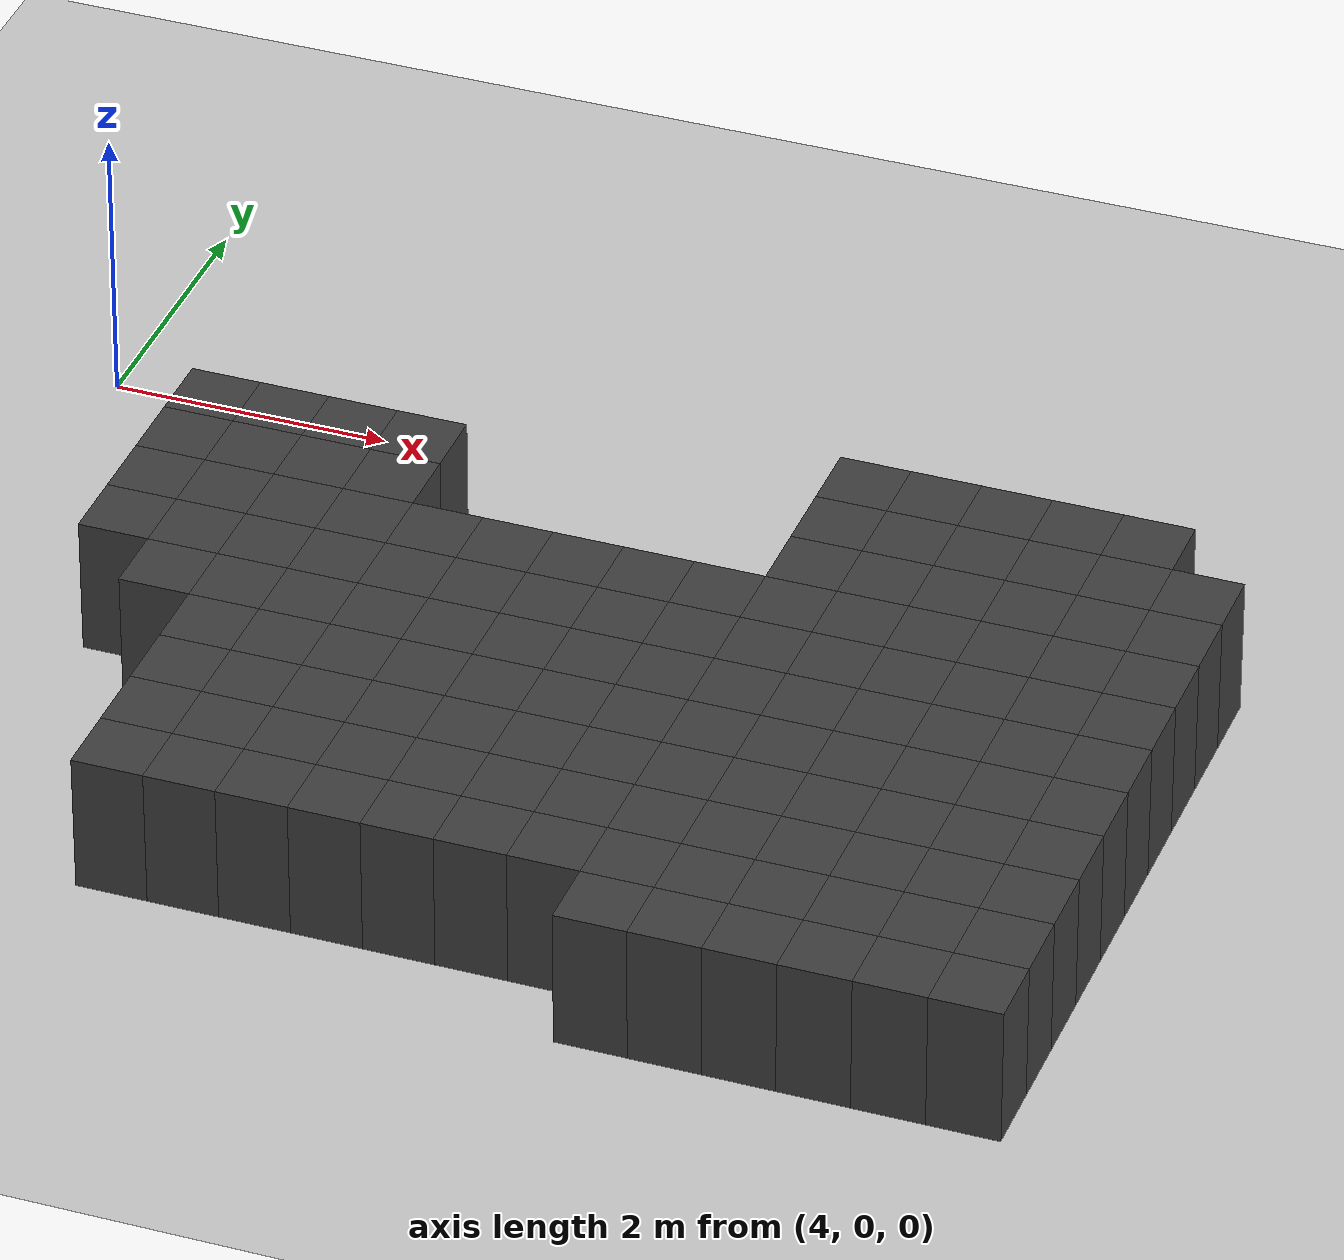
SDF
<sdf version="1.7">
 <world name="map_10777">
  <model name="ground_plane">
   <static>true</static>
   <link name="link">
    <collision name="collision">
     <geometry><plane><normal>0 0 1</normal><size>200 200</size></plane></geometry>
    </collision>
    <visual name="visual">
     <geometry><plane><normal>0 0 1</normal><size>200 200</size></plane></geometry>
     <material><ambient>0.8 0.8 0.8 1</ambient><diffuse>0.8 0.8 0.8 1</diffuse></material>
    </visual>
   </link>
  </model>
  <model name="maze_environment">
   <static>true</static>
   <link name="wall_1205">
    <pose>9.750 -0.750 0.500 0 0 0</pose>
    <collision name="col"><geometry><box><size>0.5 0.5 1.0</size></box></geometry></collision>
    <visual name="vis">
     <geometry><box><size>0.5 0.5 1.0</size></box></geometry>
     <material><ambient>0.15 0.15 0.15 1</ambient><diffuse>0.25 0.25 0.25 1</diffuse></material>
    </visual>
   </link>
   <link name="wall_1206">
    <pose>10.250 -0.750 0.500 0 0 0</pose>
    <collision name="col"><geometry><box><size>0.5 0.5 1.0</size></box></geometry></collision>
    <visual name="vis">
     <geometry><box><size>0.5 0.5 1.0</size></box></geometry>
     <material><ambient>0.15 0.15 0.15 1</ambient><diffuse>0.25 0.25 0.25 1</diffuse></material>
    </visual>
   </link>
   <link name="wall_1207">
    <pose>10.750 -0.750 0.500 0 0 0</pose>
    <collision name="col"><geometry><box><size>0.5 0.5 1.0</size></box></geometry></collision>
    <visual name="vis">
     <geometry><box><size>0.5 0.5 1.0</size></box></geometry>
     <material><ambient>0.15 0.15 0.15 1</ambient><diffuse>0.25 0.25 0.25 1</diffuse></material>
    </visual>
   </link>
   <link name="wall_1208">
    <pose>11.250 -0.750 0.500 0 0 0</pose>
    <collision name="col"><geometry><box><size>0.5 0.5 1.0</size></box></geometry></collision>
    <visual name="vis">
     <geometry><box><size>0.5 0.5 1.0</size></box></geometry>
     <material><ambient>0.15 0.15 0.15 1</ambient><diffuse>0.25 0.25 0.25 1</diffuse></material>
    </visual>
   </link>
   <link name="wall_1209">
    <pose>11.750 -0.750 0.500 0 0 0</pose>
    <collision name="col"><geometry><box><size>0.5 0.5 1.0</size></box></geometry></collision>
    <visual name="vis">
     <geometry><box><size>0.5 0.5 1.0</size></box></geometry>
     <material><ambient>0.15 0.15 0.15 1</ambient><diffuse>0.25 0.25 0.25 1</diffuse></material>
    </visual>
   </link>
   <link name="wall_1244">
    <pose>5.250 -1.250 0.500 0 0 0</pose>
    <collision name="col"><geometry><box><size>0.5 0.5 1.0</size></box></geometry></collision>
    <visual name="vis">
     <geometry><box><size>0.5 0.5 1.0</size></box></geometry>
     <material><ambient>0.15 0.15 0.15 1</ambient><diffuse>0.25 0.25 0.25 1</diffuse></material>
    </visual>
   </link>
   <link name="wall_1245">
    <pose>5.750 -1.250 0.500 0 0 0</pose>
    <collision name="col"><geometry><box><size>0.5 0.5 1.0</size></box></geometry></collision>
    <visual name="vis">
     <geometry><box><size>0.5 0.5 1.0</size></box></geometry>
     <material><ambient>0.15 0.15 0.15 1</ambient><diffuse>0.25 0.25 0.25 1</diffuse></material>
    </visual>
   </link>
   <link name="wall_1246">
    <pose>6.250 -1.250 0.500 0 0 0</pose>
    <collision name="col"><geometry><box><size>0.5 0.5 1.0</size></box></geometry></collision>
    <visual name="vis">
     <geometry><box><size>0.5 0.5 1.0</size></box></geometry>
     <material><ambient>0.15 0.15 0.15 1</ambient><diffuse>0.25 0.25 0.25 1</diffuse></material>
    </visual>
   </link>
   <link name="wall_1247">
    <pose>6.750 -1.250 0.500 0 0 0</pose>
    <collision name="col"><geometry><box><size>0.5 0.5 1.0</size></box></geometry></collision>
    <visual name="vis">
     <geometry><box><size>0.5 0.5 1.0</size></box></geometry>
     <material><ambient>0.15 0.15 0.15 1</ambient><diffuse>0.25 0.25 0.25 1</diffuse></material>
    </visual>
   </link>
   <link name="wall_1248">
    <pose>9.750 -1.250 0.500 0 0 0</pose>
    <collision name="col"><geometry><box><size>0.5 0.5 1.0</size></box></geometry></collision>
    <visual name="vis">
     <geometry><box><size>0.5 0.5 1.0</size></box></geometry>
     <material><ambient>0.15 0.15 0.15 1</ambient><diffuse>0.25 0.25 0.25 1</diffuse></material>
    </visual>
   </link>
   <link name="wall_1249">
    <pose>10.250 -1.250 0.500 0 0 0</pose>
    <collision name="col"><geometry><box><size>0.5 0.5 1.0</size></box></geometry></collision>
    <visual name="vis">
     <geometry><box><size>0.5 0.5 1.0</size></box></geometry>
     <material><ambient>0.15 0.15 0.15 1</ambient><diffuse>0.25 0.25 0.25 1</diffuse></material>
    </visual>
   </link>
   <link name="wall_1250">
    <pose>10.750 -1.250 0.500 0 0 0</pose>
    <collision name="col"><geometry><box><size>0.5 0.5 1.0</size></box></geometry></collision>
    <visual name="vis">
     <geometry><box><size>0.5 0.5 1.0</size></box></geometry>
     <material><ambient>0.15 0.15 0.15 1</ambient><diffuse>0.25 0.25 0.25 1</diffuse></material>
    </visual>
   </link>
   <link name="wall_1251">
    <pose>11.250 -1.250 0.500 0 0 0</pose>
    <collision name="col"><geometry><box><size>0.5 0.5 1.0</size></box></geometry></collision>
    <visual name="vis">
     <geometry><box><size>0.5 0.5 1.0</size></box></geometry>
     <material><ambient>0.15 0.15 0.15 1</ambient><diffuse>0.25 0.25 0.25 1</diffuse></material>
    </visual>
   </link>
   <link name="wall_1252">
    <pose>11.750 -1.250 0.500 0 0 0</pose>
    <collision name="col"><geometry><box><size>0.5 0.5 1.0</size></box></geometry></collision>
    <visual name="vis">
     <geometry><box><size>0.5 0.5 1.0</size></box></geometry>
     <material><ambient>0.15 0.15 0.15 1</ambient><diffuse>0.25 0.25 0.25 1</diffuse></material>
    </visual>
   </link>
   <link name="wall_1253">
    <pose>12.250 -1.250 0.500 0 0 0</pose>
    <collision name="col"><geometry><box><size>0.5 0.5 1.0</size></box></geometry></collision>
    <visual name="vis">
     <geometry><box><size>0.5 0.5 1.0</size></box></geometry>
     <material><ambient>0.15 0.15 0.15 1</ambient><diffuse>0.25 0.25 0.25 1</diffuse></material>
    </visual>
   </link>
   <link name="wall_1287">
    <pose>5.250 -1.750 0.500 0 0 0</pose>
    <collision name="col"><geometry><box><size>0.5 0.5 1.0</size></box></geometry></collision>
    <visual name="vis">
     <geometry><box><size>0.5 0.5 1.0</size></box></geometry>
     <material><ambient>0.15 0.15 0.15 1</ambient><diffuse>0.25 0.25 0.25 1</diffuse></material>
    </visual>
   </link>
   <link name="wall_1288">
    <pose>5.750 -1.750 0.500 0 0 0</pose>
    <collision name="col"><geometry><box><size>0.5 0.5 1.0</size></box></geometry></collision>
    <visual name="vis">
     <geometry><box><size>0.5 0.5 1.0</size></box></geometry>
     <material><ambient>0.15 0.15 0.15 1</ambient><diffuse>0.25 0.25 0.25 1</diffuse></material>
    </visual>
   </link>
   <link name="wall_1289">
    <pose>6.250 -1.750 0.500 0 0 0</pose>
    <collision name="col"><geometry><box><size>0.5 0.5 1.0</size></box></geometry></collision>
    <visual name="vis">
     <geometry><box><size>0.5 0.5 1.0</size></box></geometry>
     <material><ambient>0.15 0.15 0.15 1</ambient><diffuse>0.25 0.25 0.25 1</diffuse></material>
    </visual>
   </link>
   <link name="wall_1290">
    <pose>6.750 -1.750 0.500 0 0 0</pose>
    <collision name="col"><geometry><box><size>0.5 0.5 1.0</size></box></geometry></collision>
    <visual name="vis">
     <geometry><box><size>0.5 0.5 1.0</size></box></geometry>
     <material><ambient>0.15 0.15 0.15 1</ambient><diffuse>0.25 0.25 0.25 1</diffuse></material>
    </visual>
   </link>
   <link name="wall_1291">
    <pose>9.750 -1.750 0.500 0 0 0</pose>
    <collision name="col"><geometry><box><size>0.5 0.5 1.0</size></box></geometry></collision>
    <visual name="vis">
     <geometry><box><size>0.5 0.5 1.0</size></box></geometry>
     <material><ambient>0.15 0.15 0.15 1</ambient><diffuse>0.25 0.25 0.25 1</diffuse></material>
    </visual>
   </link>
   <link name="wall_1292">
    <pose>10.250 -1.750 0.500 0 0 0</pose>
    <collision name="col"><geometry><box><size>0.5 0.5 1.0</size></box></geometry></collision>
    <visual name="vis">
     <geometry><box><size>0.5 0.5 1.0</size></box></geometry>
     <material><ambient>0.15 0.15 0.15 1</ambient><diffuse>0.25 0.25 0.25 1</diffuse></material>
    </visual>
   </link>
   <link name="wall_1293">
    <pose>10.750 -1.750 0.500 0 0 0</pose>
    <collision name="col"><geometry><box><size>0.5 0.5 1.0</size></box></geometry></collision>
    <visual name="vis">
     <geometry><box><size>0.5 0.5 1.0</size></box></geometry>
     <material><ambient>0.15 0.15 0.15 1</ambient><diffuse>0.25 0.25 0.25 1</diffuse></material>
    </visual>
   </link>
   <link name="wall_1294">
    <pose>11.250 -1.750 0.500 0 0 0</pose>
    <collision name="col"><geometry><box><size>0.5 0.5 1.0</size></box></geometry></collision>
    <visual name="vis">
     <geometry><box><size>0.5 0.5 1.0</size></box></geometry>
     <material><ambient>0.15 0.15 0.15 1</ambient><diffuse>0.25 0.25 0.25 1</diffuse></material>
    </visual>
   </link>
   <link name="wall_1295">
    <pose>11.750 -1.750 0.500 0 0 0</pose>
    <collision name="col"><geometry><box><size>0.5 0.5 1.0</size></box></geometry></collision>
    <visual name="vis">
     <geometry><box><size>0.5 0.5 1.0</size></box></geometry>
     <material><ambient>0.15 0.15 0.15 1</ambient><diffuse>0.25 0.25 0.25 1</diffuse></material>
    </visual>
   </link>
   <link name="wall_1296">
    <pose>12.250 -1.750 0.500 0 0 0</pose>
    <collision name="col"><geometry><box><size>0.5 0.5 1.0</size></box></geometry></collision>
    <visual name="vis">
     <geometry><box><size>0.5 0.5 1.0</size></box></geometry>
     <material><ambient>0.15 0.15 0.15 1</ambient><diffuse>0.25 0.25 0.25 1</diffuse></material>
    </visual>
   </link>
   <link name="wall_1330">
    <pose>5.250 -2.250 0.500 0 0 0</pose>
    <collision name="col"><geometry><box><size>0.5 0.5 1.0</size></box></geometry></collision>
    <visual name="vis">
     <geometry><box><size>0.5 0.5 1.0</size></box></geometry>
     <material><ambient>0.15 0.15 0.15 1</ambient><diffuse>0.25 0.25 0.25 1</diffuse></material>
    </visual>
   </link>
   <link name="wall_1331">
    <pose>5.750 -2.250 0.500 0 0 0</pose>
    <collision name="col"><geometry><box><size>0.5 0.5 1.0</size></box></geometry></collision>
    <visual name="vis">
     <geometry><box><size>0.5 0.5 1.0</size></box></geometry>
     <material><ambient>0.15 0.15 0.15 1</ambient><diffuse>0.25 0.25 0.25 1</diffuse></material>
    </visual>
   </link>
   <link name="wall_1332">
    <pose>6.250 -2.250 0.500 0 0 0</pose>
    <collision name="col"><geometry><box><size>0.5 0.5 1.0</size></box></geometry></collision>
    <visual name="vis">
     <geometry><box><size>0.5 0.5 1.0</size></box></geometry>
     <material><ambient>0.15 0.15 0.15 1</ambient><diffuse>0.25 0.25 0.25 1</diffuse></material>
    </visual>
   </link>
   <link name="wall_1333">
    <pose>6.750 -2.250 0.500 0 0 0</pose>
    <collision name="col"><geometry><box><size>0.5 0.5 1.0</size></box></geometry></collision>
    <visual name="vis">
     <geometry><box><size>0.5 0.5 1.0</size></box></geometry>
     <material><ambient>0.15 0.15 0.15 1</ambient><diffuse>0.25 0.25 0.25 1</diffuse></material>
    </visual>
   </link>
   <link name="wall_1334">
    <pose>7.250 -2.250 0.500 0 0 0</pose>
    <collision name="col"><geometry><box><size>0.5 0.5 1.0</size></box></geometry></collision>
    <visual name="vis">
     <geometry><box><size>0.5 0.5 1.0</size></box></geometry>
     <material><ambient>0.15 0.15 0.15 1</ambient><diffuse>0.25 0.25 0.25 1</diffuse></material>
    </visual>
   </link>
   <link name="wall_1335">
    <pose>7.750 -2.250 0.500 0 0 0</pose>
    <collision name="col"><geometry><box><size>0.5 0.5 1.0</size></box></geometry></collision>
    <visual name="vis">
     <geometry><box><size>0.5 0.5 1.0</size></box></geometry>
     <material><ambient>0.15 0.15 0.15 1</ambient><diffuse>0.25 0.25 0.25 1</diffuse></material>
    </visual>
   </link>
   <link name="wall_1336">
    <pose>8.250 -2.250 0.500 0 0 0</pose>
    <collision name="col"><geometry><box><size>0.5 0.5 1.0</size></box></geometry></collision>
    <visual name="vis">
     <geometry><box><size>0.5 0.5 1.0</size></box></geometry>
     <material><ambient>0.15 0.15 0.15 1</ambient><diffuse>0.25 0.25 0.25 1</diffuse></material>
    </visual>
   </link>
   <link name="wall_1337">
    <pose>8.750 -2.250 0.500 0 0 0</pose>
    <collision name="col"><geometry><box><size>0.5 0.5 1.0</size></box></geometry></collision>
    <visual name="vis">
     <geometry><box><size>0.5 0.5 1.0</size></box></geometry>
     <material><ambient>0.15 0.15 0.15 1</ambient><diffuse>0.25 0.25 0.25 1</diffuse></material>
    </visual>
   </link>
   <link name="wall_1338">
    <pose>9.250 -2.250 0.500 0 0 0</pose>
    <collision name="col"><geometry><box><size>0.5 0.5 1.0</size></box></geometry></collision>
    <visual name="vis">
     <geometry><box><size>0.5 0.5 1.0</size></box></geometry>
     <material><ambient>0.15 0.15 0.15 1</ambient><diffuse>0.25 0.25 0.25 1</diffuse></material>
    </visual>
   </link>
   <link name="wall_1339">
    <pose>9.750 -2.250 0.500 0 0 0</pose>
    <collision name="col"><geometry><box><size>0.5 0.5 1.0</size></box></geometry></collision>
    <visual name="vis">
     <geometry><box><size>0.5 0.5 1.0</size></box></geometry>
     <material><ambient>0.15 0.15 0.15 1</ambient><diffuse>0.25 0.25 0.25 1</diffuse></material>
    </visual>
   </link>
   <link name="wall_1340">
    <pose>10.250 -2.250 0.500 0 0 0</pose>
    <collision name="col"><geometry><box><size>0.5 0.5 1.0</size></box></geometry></collision>
    <visual name="vis">
     <geometry><box><size>0.5 0.5 1.0</size></box></geometry>
     <material><ambient>0.15 0.15 0.15 1</ambient><diffuse>0.25 0.25 0.25 1</diffuse></material>
    </visual>
   </link>
   <link name="wall_1341">
    <pose>10.750 -2.250 0.500 0 0 0</pose>
    <collision name="col"><geometry><box><size>0.5 0.5 1.0</size></box></geometry></collision>
    <visual name="vis">
     <geometry><box><size>0.5 0.5 1.0</size></box></geometry>
     <material><ambient>0.15 0.15 0.15 1</ambient><diffuse>0.25 0.25 0.25 1</diffuse></material>
    </visual>
   </link>
   <link name="wall_1342">
    <pose>11.250 -2.250 0.500 0 0 0</pose>
    <collision name="col"><geometry><box><size>0.5 0.5 1.0</size></box></geometry></collision>
    <visual name="vis">
     <geometry><box><size>0.5 0.5 1.0</size></box></geometry>
     <material><ambient>0.15 0.15 0.15 1</ambient><diffuse>0.25 0.25 0.25 1</diffuse></material>
    </visual>
   </link>
   <link name="wall_1343">
    <pose>11.750 -2.250 0.500 0 0 0</pose>
    <collision name="col"><geometry><box><size>0.5 0.5 1.0</size></box></geometry></collision>
    <visual name="vis">
     <geometry><box><size>0.5 0.5 1.0</size></box></geometry>
     <material><ambient>0.15 0.15 0.15 1</ambient><diffuse>0.25 0.25 0.25 1</diffuse></material>
    </visual>
   </link>
   <link name="wall_1344">
    <pose>12.250 -2.250 0.500 0 0 0</pose>
    <collision name="col"><geometry><box><size>0.5 0.5 1.0</size></box></geometry></collision>
    <visual name="vis">
     <geometry><box><size>0.5 0.5 1.0</size></box></geometry>
     <material><ambient>0.15 0.15 0.15 1</ambient><diffuse>0.25 0.25 0.25 1</diffuse></material>
    </visual>
   </link>
   <link name="wall_1378">
    <pose>5.250 -2.750 0.500 0 0 0</pose>
    <collision name="col"><geometry><box><size>0.5 0.5 1.0</size></box></geometry></collision>
    <visual name="vis">
     <geometry><box><size>0.5 0.5 1.0</size></box></geometry>
     <material><ambient>0.15 0.15 0.15 1</ambient><diffuse>0.25 0.25 0.25 1</diffuse></material>
    </visual>
   </link>
   <link name="wall_1379">
    <pose>5.750 -2.750 0.500 0 0 0</pose>
    <collision name="col"><geometry><box><size>0.5 0.5 1.0</size></box></geometry></collision>
    <visual name="vis">
     <geometry><box><size>0.5 0.5 1.0</size></box></geometry>
     <material><ambient>0.15 0.15 0.15 1</ambient><diffuse>0.25 0.25 0.25 1</diffuse></material>
    </visual>
   </link>
   <link name="wall_1380">
    <pose>6.250 -2.750 0.500 0 0 0</pose>
    <collision name="col"><geometry><box><size>0.5 0.5 1.0</size></box></geometry></collision>
    <visual name="vis">
     <geometry><box><size>0.5 0.5 1.0</size></box></geometry>
     <material><ambient>0.15 0.15 0.15 1</ambient><diffuse>0.25 0.25 0.25 1</diffuse></material>
    </visual>
   </link>
   <link name="wall_1381">
    <pose>6.750 -2.750 0.500 0 0 0</pose>
    <collision name="col"><geometry><box><size>0.5 0.5 1.0</size></box></geometry></collision>
    <visual name="vis">
     <geometry><box><size>0.5 0.5 1.0</size></box></geometry>
     <material><ambient>0.15 0.15 0.15 1</ambient><diffuse>0.25 0.25 0.25 1</diffuse></material>
    </visual>
   </link>
   <link name="wall_1382">
    <pose>7.250 -2.750 0.500 0 0 0</pose>
    <collision name="col"><geometry><box><size>0.5 0.5 1.0</size></box></geometry></collision>
    <visual name="vis">
     <geometry><box><size>0.5 0.5 1.0</size></box></geometry>
     <material><ambient>0.15 0.15 0.15 1</ambient><diffuse>0.25 0.25 0.25 1</diffuse></material>
    </visual>
   </link>
   <link name="wall_1383">
    <pose>7.750 -2.750 0.500 0 0 0</pose>
    <collision name="col"><geometry><box><size>0.5 0.5 1.0</size></box></geometry></collision>
    <visual name="vis">
     <geometry><box><size>0.5 0.5 1.0</size></box></geometry>
     <material><ambient>0.15 0.15 0.15 1</ambient><diffuse>0.25 0.25 0.25 1</diffuse></material>
    </visual>
   </link>
   <link name="wall_1384">
    <pose>8.250 -2.750 0.500 0 0 0</pose>
    <collision name="col"><geometry><box><size>0.5 0.5 1.0</size></box></geometry></collision>
    <visual name="vis">
     <geometry><box><size>0.5 0.5 1.0</size></box></geometry>
     <material><ambient>0.15 0.15 0.15 1</ambient><diffuse>0.25 0.25 0.25 1</diffuse></material>
    </visual>
   </link>
   <link name="wall_1385">
    <pose>8.750 -2.750 0.500 0 0 0</pose>
    <collision name="col"><geometry><box><size>0.5 0.5 1.0</size></box></geometry></collision>
    <visual name="vis">
     <geometry><box><size>0.5 0.5 1.0</size></box></geometry>
     <material><ambient>0.15 0.15 0.15 1</ambient><diffuse>0.25 0.25 0.25 1</diffuse></material>
    </visual>
   </link>
   <link name="wall_1386">
    <pose>9.250 -2.750 0.500 0 0 0</pose>
    <collision name="col"><geometry><box><size>0.5 0.5 1.0</size></box></geometry></collision>
    <visual name="vis">
     <geometry><box><size>0.5 0.5 1.0</size></box></geometry>
     <material><ambient>0.15 0.15 0.15 1</ambient><diffuse>0.25 0.25 0.25 1</diffuse></material>
    </visual>
   </link>
   <link name="wall_1387">
    <pose>9.750 -2.750 0.500 0 0 0</pose>
    <collision name="col"><geometry><box><size>0.5 0.5 1.0</size></box></geometry></collision>
    <visual name="vis">
     <geometry><box><size>0.5 0.5 1.0</size></box></geometry>
     <material><ambient>0.15 0.15 0.15 1</ambient><diffuse>0.25 0.25 0.25 1</diffuse></material>
    </visual>
   </link>
   <link name="wall_1388">
    <pose>10.250 -2.750 0.500 0 0 0</pose>
    <collision name="col"><geometry><box><size>0.5 0.5 1.0</size></box></geometry></collision>
    <visual name="vis">
     <geometry><box><size>0.5 0.5 1.0</size></box></geometry>
     <material><ambient>0.15 0.15 0.15 1</ambient><diffuse>0.25 0.25 0.25 1</diffuse></material>
    </visual>
   </link>
   <link name="wall_1389">
    <pose>10.750 -2.750 0.500 0 0 0</pose>
    <collision name="col"><geometry><box><size>0.5 0.5 1.0</size></box></geometry></collision>
    <visual name="vis">
     <geometry><box><size>0.5 0.5 1.0</size></box></geometry>
     <material><ambient>0.15 0.15 0.15 1</ambient><diffuse>0.25 0.25 0.25 1</diffuse></material>
    </visual>
   </link>
   <link name="wall_1390">
    <pose>11.250 -2.750 0.500 0 0 0</pose>
    <collision name="col"><geometry><box><size>0.5 0.5 1.0</size></box></geometry></collision>
    <visual name="vis">
     <geometry><box><size>0.5 0.5 1.0</size></box></geometry>
     <material><ambient>0.15 0.15 0.15 1</ambient><diffuse>0.25 0.25 0.25 1</diffuse></material>
    </visual>
   </link>
   <link name="wall_1391">
    <pose>11.750 -2.750 0.500 0 0 0</pose>
    <collision name="col"><geometry><box><size>0.5 0.5 1.0</size></box></geometry></collision>
    <visual name="vis">
     <geometry><box><size>0.5 0.5 1.0</size></box></geometry>
     <material><ambient>0.15 0.15 0.15 1</ambient><diffuse>0.25 0.25 0.25 1</diffuse></material>
    </visual>
   </link>
   <link name="wall_1392">
    <pose>12.250 -2.750 0.500 0 0 0</pose>
    <collision name="col"><geometry><box><size>0.5 0.5 1.0</size></box></geometry></collision>
    <visual name="vis">
     <geometry><box><size>0.5 0.5 1.0</size></box></geometry>
     <material><ambient>0.15 0.15 0.15 1</ambient><diffuse>0.25 0.25 0.25 1</diffuse></material>
    </visual>
   </link>
   <link name="wall_1427">
    <pose>5.750 -3.250 0.500 0 0 0</pose>
    <collision name="col"><geometry><box><size>0.5 0.5 1.0</size></box></geometry></collision>
    <visual name="vis">
     <geometry><box><size>0.5 0.5 1.0</size></box></geometry>
     <material><ambient>0.15 0.15 0.15 1</ambient><diffuse>0.25 0.25 0.25 1</diffuse></material>
    </visual>
   </link>
   <link name="wall_1428">
    <pose>6.250 -3.250 0.500 0 0 0</pose>
    <collision name="col"><geometry><box><size>0.5 0.5 1.0</size></box></geometry></collision>
    <visual name="vis">
     <geometry><box><size>0.5 0.5 1.0</size></box></geometry>
     <material><ambient>0.15 0.15 0.15 1</ambient><diffuse>0.25 0.25 0.25 1</diffuse></material>
    </visual>
   </link>
   <link name="wall_1429">
    <pose>6.750 -3.250 0.500 0 0 0</pose>
    <collision name="col"><geometry><box><size>0.5 0.5 1.0</size></box></geometry></collision>
    <visual name="vis">
     <geometry><box><size>0.5 0.5 1.0</size></box></geometry>
     <material><ambient>0.15 0.15 0.15 1</ambient><diffuse>0.25 0.25 0.25 1</diffuse></material>
    </visual>
   </link>
   <link name="wall_1430">
    <pose>7.250 -3.250 0.500 0 0 0</pose>
    <collision name="col"><geometry><box><size>0.5 0.5 1.0</size></box></geometry></collision>
    <visual name="vis">
     <geometry><box><size>0.5 0.5 1.0</size></box></geometry>
     <material><ambient>0.15 0.15 0.15 1</ambient><diffuse>0.25 0.25 0.25 1</diffuse></material>
    </visual>
   </link>
   <link name="wall_1431">
    <pose>7.750 -3.250 0.500 0 0 0</pose>
    <collision name="col"><geometry><box><size>0.5 0.5 1.0</size></box></geometry></collision>
    <visual name="vis">
     <geometry><box><size>0.5 0.5 1.0</size></box></geometry>
     <material><ambient>0.15 0.15 0.15 1</ambient><diffuse>0.25 0.25 0.25 1</diffuse></material>
    </visual>
   </link>
   <link name="wall_1432">
    <pose>8.250 -3.250 0.500 0 0 0</pose>
    <collision name="col"><geometry><box><size>0.5 0.5 1.0</size></box></geometry></collision>
    <visual name="vis">
     <geometry><box><size>0.5 0.5 1.0</size></box></geometry>
     <material><ambient>0.15 0.15 0.15 1</ambient><diffuse>0.25 0.25 0.25 1</diffuse></material>
    </visual>
   </link>
   <link name="wall_1433">
    <pose>8.750 -3.250 0.500 0 0 0</pose>
    <collision name="col"><geometry><box><size>0.5 0.5 1.0</size></box></geometry></collision>
    <visual name="vis">
     <geometry><box><size>0.5 0.5 1.0</size></box></geometry>
     <material><ambient>0.15 0.15 0.15 1</ambient><diffuse>0.25 0.25 0.25 1</diffuse></material>
    </visual>
   </link>
   <link name="wall_1434">
    <pose>9.250 -3.250 0.500 0 0 0</pose>
    <collision name="col"><geometry><box><size>0.5 0.5 1.0</size></box></geometry></collision>
    <visual name="vis">
     <geometry><box><size>0.5 0.5 1.0</size></box></geometry>
     <material><ambient>0.15 0.15 0.15 1</ambient><diffuse>0.25 0.25 0.25 1</diffuse></material>
    </visual>
   </link>
   <link name="wall_1435">
    <pose>9.750 -3.250 0.500 0 0 0</pose>
    <collision name="col"><geometry><box><size>0.5 0.5 1.0</size></box></geometry></collision>
    <visual name="vis">
     <geometry><box><size>0.5 0.5 1.0</size></box></geometry>
     <material><ambient>0.15 0.15 0.15 1</ambient><diffuse>0.25 0.25 0.25 1</diffuse></material>
    </visual>
   </link>
   <link name="wall_1436">
    <pose>10.250 -3.250 0.500 0 0 0</pose>
    <collision name="col"><geometry><box><size>0.5 0.5 1.0</size></box></geometry></collision>
    <visual name="vis">
     <geometry><box><size>0.5 0.5 1.0</size></box></geometry>
     <material><ambient>0.15 0.15 0.15 1</ambient><diffuse>0.25 0.25 0.25 1</diffuse></material>
    </visual>
   </link>
   <link name="wall_1437">
    <pose>10.750 -3.250 0.500 0 0 0</pose>
    <collision name="col"><geometry><box><size>0.5 0.5 1.0</size></box></geometry></collision>
    <visual name="vis">
     <geometry><box><size>0.5 0.5 1.0</size></box></geometry>
     <material><ambient>0.15 0.15 0.15 1</ambient><diffuse>0.25 0.25 0.25 1</diffuse></material>
    </visual>
   </link>
   <link name="wall_1438">
    <pose>11.250 -3.250 0.500 0 0 0</pose>
    <collision name="col"><geometry><box><size>0.5 0.5 1.0</size></box></geometry></collision>
    <visual name="vis">
     <geometry><box><size>0.5 0.5 1.0</size></box></geometry>
     <material><ambient>0.15 0.15 0.15 1</ambient><diffuse>0.25 0.25 0.25 1</diffuse></material>
    </visual>
   </link>
   <link name="wall_1439">
    <pose>11.750 -3.250 0.500 0 0 0</pose>
    <collision name="col"><geometry><box><size>0.5 0.5 1.0</size></box></geometry></collision>
    <visual name="vis">
     <geometry><box><size>0.5 0.5 1.0</size></box></geometry>
     <material><ambient>0.15 0.15 0.15 1</ambient><diffuse>0.25 0.25 0.25 1</diffuse></material>
    </visual>
   </link>
   <link name="wall_1440">
    <pose>12.250 -3.250 0.500 0 0 0</pose>
    <collision name="col"><geometry><box><size>0.5 0.5 1.0</size></box></geometry></collision>
    <visual name="vis">
     <geometry><box><size>0.5 0.5 1.0</size></box></geometry>
     <material><ambient>0.15 0.15 0.15 1</ambient><diffuse>0.25 0.25 0.25 1</diffuse></material>
    </visual>
   </link>
   <link name="wall_1470">
    <pose>6.250 -3.750 0.500 0 0 0</pose>
    <collision name="col"><geometry><box><size>0.5 0.5 1.0</size></box></geometry></collision>
    <visual name="vis">
     <geometry><box><size>0.5 0.5 1.0</size></box></geometry>
     <material><ambient>0.15 0.15 0.15 1</ambient><diffuse>0.25 0.25 0.25 1</diffuse></material>
    </visual>
   </link>
   <link name="wall_1471">
    <pose>6.750 -3.750 0.500 0 0 0</pose>
    <collision name="col"><geometry><box><size>0.5 0.5 1.0</size></box></geometry></collision>
    <visual name="vis">
     <geometry><box><size>0.5 0.5 1.0</size></box></geometry>
     <material><ambient>0.15 0.15 0.15 1</ambient><diffuse>0.25 0.25 0.25 1</diffuse></material>
    </visual>
   </link>
   <link name="wall_1472">
    <pose>7.250 -3.750 0.500 0 0 0</pose>
    <collision name="col"><geometry><box><size>0.5 0.5 1.0</size></box></geometry></collision>
    <visual name="vis">
     <geometry><box><size>0.5 0.5 1.0</size></box></geometry>
     <material><ambient>0.15 0.15 0.15 1</ambient><diffuse>0.25 0.25 0.25 1</diffuse></material>
    </visual>
   </link>
   <link name="wall_1473">
    <pose>7.750 -3.750 0.500 0 0 0</pose>
    <collision name="col"><geometry><box><size>0.5 0.5 1.0</size></box></geometry></collision>
    <visual name="vis">
     <geometry><box><size>0.5 0.5 1.0</size></box></geometry>
     <material><ambient>0.15 0.15 0.15 1</ambient><diffuse>0.25 0.25 0.25 1</diffuse></material>
    </visual>
   </link>
   <link name="wall_1474">
    <pose>8.250 -3.750 0.500 0 0 0</pose>
    <collision name="col"><geometry><box><size>0.5 0.5 1.0</size></box></geometry></collision>
    <visual name="vis">
     <geometry><box><size>0.5 0.5 1.0</size></box></geometry>
     <material><ambient>0.15 0.15 0.15 1</ambient><diffuse>0.25 0.25 0.25 1</diffuse></material>
    </visual>
   </link>
   <link name="wall_1475">
    <pose>8.750 -3.750 0.500 0 0 0</pose>
    <collision name="col"><geometry><box><size>0.5 0.5 1.0</size></box></geometry></collision>
    <visual name="vis">
     <geometry><box><size>0.5 0.5 1.0</size></box></geometry>
     <material><ambient>0.15 0.15 0.15 1</ambient><diffuse>0.25 0.25 0.25 1</diffuse></material>
    </visual>
   </link>
   <link name="wall_1476">
    <pose>9.250 -3.750 0.500 0 0 0</pose>
    <collision name="col"><geometry><box><size>0.5 0.5 1.0</size></box></geometry></collision>
    <visual name="vis">
     <geometry><box><size>0.5 0.5 1.0</size></box></geometry>
     <material><ambient>0.15 0.15 0.15 1</ambient><diffuse>0.25 0.25 0.25 1</diffuse></material>
    </visual>
   </link>
   <link name="wall_1477">
    <pose>9.750 -3.750 0.500 0 0 0</pose>
    <collision name="col"><geometry><box><size>0.5 0.5 1.0</size></box></geometry></collision>
    <visual name="vis">
     <geometry><box><size>0.5 0.5 1.0</size></box></geometry>
     <material><ambient>0.15 0.15 0.15 1</ambient><diffuse>0.25 0.25 0.25 1</diffuse></material>
    </visual>
   </link>
   <link name="wall_1478">
    <pose>10.250 -3.750 0.500 0 0 0</pose>
    <collision name="col"><geometry><box><size>0.5 0.5 1.0</size></box></geometry></collision>
    <visual name="vis">
     <geometry><box><size>0.5 0.5 1.0</size></box></geometry>
     <material><ambient>0.15 0.15 0.15 1</ambient><diffuse>0.25 0.25 0.25 1</diffuse></material>
    </visual>
   </link>
   <link name="wall_1479">
    <pose>10.750 -3.750 0.500 0 0 0</pose>
    <collision name="col"><geometry><box><size>0.5 0.5 1.0</size></box></geometry></collision>
    <visual name="vis">
     <geometry><box><size>0.5 0.5 1.0</size></box></geometry>
     <material><ambient>0.15 0.15 0.15 1</ambient><diffuse>0.25 0.25 0.25 1</diffuse></material>
    </visual>
   </link>
   <link name="wall_1480">
    <pose>11.250 -3.750 0.500 0 0 0</pose>
    <collision name="col"><geometry><box><size>0.5 0.5 1.0</size></box></geometry></collision>
    <visual name="vis">
     <geometry><box><size>0.5 0.5 1.0</size></box></geometry>
     <material><ambient>0.15 0.15 0.15 1</ambient><diffuse>0.25 0.25 0.25 1</diffuse></material>
    </visual>
   </link>
   <link name="wall_1481">
    <pose>11.750 -3.750 0.500 0 0 0</pose>
    <collision name="col"><geometry><box><size>0.5 0.5 1.0</size></box></geometry></collision>
    <visual name="vis">
     <geometry><box><size>0.5 0.5 1.0</size></box></geometry>
     <material><ambient>0.15 0.15 0.15 1</ambient><diffuse>0.25 0.25 0.25 1</diffuse></material>
    </visual>
   </link>
   <link name="wall_1482">
    <pose>12.250 -3.750 0.500 0 0 0</pose>
    <collision name="col"><geometry><box><size>0.5 0.5 1.0</size></box></geometry></collision>
    <visual name="vis">
     <geometry><box><size>0.5 0.5 1.0</size></box></geometry>
     <material><ambient>0.15 0.15 0.15 1</ambient><diffuse>0.25 0.25 0.25 1</diffuse></material>
    </visual>
   </link>
   <link name="wall_1509">
    <pose>6.250 -4.250 0.500 0 0 0</pose>
    <collision name="col"><geometry><box><size>0.5 0.5 1.0</size></box></geometry></collision>
    <visual name="vis">
     <geometry><box><size>0.5 0.5 1.0</size></box></geometry>
     <material><ambient>0.15 0.15 0.15 1</ambient><diffuse>0.25 0.25 0.25 1</diffuse></material>
    </visual>
   </link>
   <link name="wall_1510">
    <pose>6.750 -4.250 0.500 0 0 0</pose>
    <collision name="col"><geometry><box><size>0.5 0.5 1.0</size></box></geometry></collision>
    <visual name="vis">
     <geometry><box><size>0.5 0.5 1.0</size></box></geometry>
     <material><ambient>0.15 0.15 0.15 1</ambient><diffuse>0.25 0.25 0.25 1</diffuse></material>
    </visual>
   </link>
   <link name="wall_1511">
    <pose>7.250 -4.250 0.500 0 0 0</pose>
    <collision name="col"><geometry><box><size>0.5 0.5 1.0</size></box></geometry></collision>
    <visual name="vis">
     <geometry><box><size>0.5 0.5 1.0</size></box></geometry>
     <material><ambient>0.15 0.15 0.15 1</ambient><diffuse>0.25 0.25 0.25 1</diffuse></material>
    </visual>
   </link>
   <link name="wall_1512">
    <pose>7.750 -4.250 0.500 0 0 0</pose>
    <collision name="col"><geometry><box><size>0.5 0.5 1.0</size></box></geometry></collision>
    <visual name="vis">
     <geometry><box><size>0.5 0.5 1.0</size></box></geometry>
     <material><ambient>0.15 0.15 0.15 1</ambient><diffuse>0.25 0.25 0.25 1</diffuse></material>
    </visual>
   </link>
   <link name="wall_1513">
    <pose>8.250 -4.250 0.500 0 0 0</pose>
    <collision name="col"><geometry><box><size>0.5 0.5 1.0</size></box></geometry></collision>
    <visual name="vis">
     <geometry><box><size>0.5 0.5 1.0</size></box></geometry>
     <material><ambient>0.15 0.15 0.15 1</ambient><diffuse>0.25 0.25 0.25 1</diffuse></material>
    </visual>
   </link>
   <link name="wall_1514">
    <pose>8.750 -4.250 0.500 0 0 0</pose>
    <collision name="col"><geometry><box><size>0.5 0.5 1.0</size></box></geometry></collision>
    <visual name="vis">
     <geometry><box><size>0.5 0.5 1.0</size></box></geometry>
     <material><ambient>0.15 0.15 0.15 1</ambient><diffuse>0.25 0.25 0.25 1</diffuse></material>
    </visual>
   </link>
   <link name="wall_1515">
    <pose>9.250 -4.250 0.500 0 0 0</pose>
    <collision name="col"><geometry><box><size>0.5 0.5 1.0</size></box></geometry></collision>
    <visual name="vis">
     <geometry><box><size>0.5 0.5 1.0</size></box></geometry>
     <material><ambient>0.15 0.15 0.15 1</ambient><diffuse>0.25 0.25 0.25 1</diffuse></material>
    </visual>
   </link>
   <link name="wall_1516">
    <pose>9.750 -4.250 0.500 0 0 0</pose>
    <collision name="col"><geometry><box><size>0.5 0.5 1.0</size></box></geometry></collision>
    <visual name="vis">
     <geometry><box><size>0.5 0.5 1.0</size></box></geometry>
     <material><ambient>0.15 0.15 0.15 1</ambient><diffuse>0.25 0.25 0.25 1</diffuse></material>
    </visual>
   </link>
   <link name="wall_1517">
    <pose>10.250 -4.250 0.500 0 0 0</pose>
    <collision name="col"><geometry><box><size>0.5 0.5 1.0</size></box></geometry></collision>
    <visual name="vis">
     <geometry><box><size>0.5 0.5 1.0</size></box></geometry>
     <material><ambient>0.15 0.15 0.15 1</ambient><diffuse>0.25 0.25 0.25 1</diffuse></material>
    </visual>
   </link>
   <link name="wall_1518">
    <pose>10.750 -4.250 0.500 0 0 0</pose>
    <collision name="col"><geometry><box><size>0.5 0.5 1.0</size></box></geometry></collision>
    <visual name="vis">
     <geometry><box><size>0.5 0.5 1.0</size></box></geometry>
     <material><ambient>0.15 0.15 0.15 1</ambient><diffuse>0.25 0.25 0.25 1</diffuse></material>
    </visual>
   </link>
   <link name="wall_1519">
    <pose>11.250 -4.250 0.500 0 0 0</pose>
    <collision name="col"><geometry><box><size>0.5 0.5 1.0</size></box></geometry></collision>
    <visual name="vis">
     <geometry><box><size>0.5 0.5 1.0</size></box></geometry>
     <material><ambient>0.15 0.15 0.15 1</ambient><diffuse>0.25 0.25 0.25 1</diffuse></material>
    </visual>
   </link>
   <link name="wall_1520">
    <pose>11.750 -4.250 0.500 0 0 0</pose>
    <collision name="col"><geometry><box><size>0.5 0.5 1.0</size></box></geometry></collision>
    <visual name="vis">
     <geometry><box><size>0.5 0.5 1.0</size></box></geometry>
     <material><ambient>0.15 0.15 0.15 1</ambient><diffuse>0.25 0.25 0.25 1</diffuse></material>
    </visual>
   </link>
   <link name="wall_1521">
    <pose>12.250 -4.250 0.500 0 0 0</pose>
    <collision name="col"><geometry><box><size>0.5 0.5 1.0</size></box></geometry></collision>
    <visual name="vis">
     <geometry><box><size>0.5 0.5 1.0</size></box></geometry>
     <material><ambient>0.15 0.15 0.15 1</ambient><diffuse>0.25 0.25 0.25 1</diffuse></material>
    </visual>
   </link>
   <link name="wall_1548">
    <pose>6.250 -4.750 0.500 0 0 0</pose>
    <collision name="col"><geometry><box><size>0.5 0.5 1.0</size></box></geometry></collision>
    <visual name="vis">
     <geometry><box><size>0.5 0.5 1.0</size></box></geometry>
     <material><ambient>0.15 0.15 0.15 1</ambient><diffuse>0.25 0.25 0.25 1</diffuse></material>
    </visual>
   </link>
   <link name="wall_1549">
    <pose>6.750 -4.750 0.500 0 0 0</pose>
    <collision name="col"><geometry><box><size>0.5 0.5 1.0</size></box></geometry></collision>
    <visual name="vis">
     <geometry><box><size>0.5 0.5 1.0</size></box></geometry>
     <material><ambient>0.15 0.15 0.15 1</ambient><diffuse>0.25 0.25 0.25 1</diffuse></material>
    </visual>
   </link>
   <link name="wall_1550">
    <pose>7.250 -4.750 0.500 0 0 0</pose>
    <collision name="col"><geometry><box><size>0.5 0.5 1.0</size></box></geometry></collision>
    <visual name="vis">
     <geometry><box><size>0.5 0.5 1.0</size></box></geometry>
     <material><ambient>0.15 0.15 0.15 1</ambient><diffuse>0.25 0.25 0.25 1</diffuse></material>
    </visual>
   </link>
   <link name="wall_1551">
    <pose>7.750 -4.750 0.500 0 0 0</pose>
    <collision name="col"><geometry><box><size>0.5 0.5 1.0</size></box></geometry></collision>
    <visual name="vis">
     <geometry><box><size>0.5 0.5 1.0</size></box></geometry>
     <material><ambient>0.15 0.15 0.15 1</ambient><diffuse>0.25 0.25 0.25 1</diffuse></material>
    </visual>
   </link>
   <link name="wall_1552">
    <pose>8.250 -4.750 0.500 0 0 0</pose>
    <collision name="col"><geometry><box><size>0.5 0.5 1.0</size></box></geometry></collision>
    <visual name="vis">
     <geometry><box><size>0.5 0.5 1.0</size></box></geometry>
     <material><ambient>0.15 0.15 0.15 1</ambient><diffuse>0.25 0.25 0.25 1</diffuse></material>
    </visual>
   </link>
   <link name="wall_1553">
    <pose>8.750 -4.750 0.500 0 0 0</pose>
    <collision name="col"><geometry><box><size>0.5 0.5 1.0</size></box></geometry></collision>
    <visual name="vis">
     <geometry><box><size>0.5 0.5 1.0</size></box></geometry>
     <material><ambient>0.15 0.15 0.15 1</ambient><diffuse>0.25 0.25 0.25 1</diffuse></material>
    </visual>
   </link>
   <link name="wall_1554">
    <pose>9.250 -4.750 0.500 0 0 0</pose>
    <collision name="col"><geometry><box><size>0.5 0.5 1.0</size></box></geometry></collision>
    <visual name="vis">
     <geometry><box><size>0.5 0.5 1.0</size></box></geometry>
     <material><ambient>0.15 0.15 0.15 1</ambient><diffuse>0.25 0.25 0.25 1</diffuse></material>
    </visual>
   </link>
   <link name="wall_1555">
    <pose>9.750 -4.750 0.500 0 0 0</pose>
    <collision name="col"><geometry><box><size>0.5 0.5 1.0</size></box></geometry></collision>
    <visual name="vis">
     <geometry><box><size>0.5 0.5 1.0</size></box></geometry>
     <material><ambient>0.15 0.15 0.15 1</ambient><diffuse>0.25 0.25 0.25 1</diffuse></material>
    </visual>
   </link>
   <link name="wall_1556">
    <pose>10.250 -4.750 0.500 0 0 0</pose>
    <collision name="col"><geometry><box><size>0.5 0.5 1.0</size></box></geometry></collision>
    <visual name="vis">
     <geometry><box><size>0.5 0.5 1.0</size></box></geometry>
     <material><ambient>0.15 0.15 0.15 1</ambient><diffuse>0.25 0.25 0.25 1</diffuse></material>
    </visual>
   </link>
   <link name="wall_1557">
    <pose>10.750 -4.750 0.500 0 0 0</pose>
    <collision name="col"><geometry><box><size>0.5 0.5 1.0</size></box></geometry></collision>
    <visual name="vis">
     <geometry><box><size>0.5 0.5 1.0</size></box></geometry>
     <material><ambient>0.15 0.15 0.15 1</ambient><diffuse>0.25 0.25 0.25 1</diffuse></material>
    </visual>
   </link>
   <link name="wall_1558">
    <pose>11.250 -4.750 0.500 0 0 0</pose>
    <collision name="col"><geometry><box><size>0.5 0.5 1.0</size></box></geometry></collision>
    <visual name="vis">
     <geometry><box><size>0.5 0.5 1.0</size></box></geometry>
     <material><ambient>0.15 0.15 0.15 1</ambient><diffuse>0.25 0.25 0.25 1</diffuse></material>
    </visual>
   </link>
   <link name="wall_1559">
    <pose>11.750 -4.750 0.500 0 0 0</pose>
    <collision name="col"><geometry><box><size>0.5 0.5 1.0</size></box></geometry></collision>
    <visual name="vis">
     <geometry><box><size>0.5 0.5 1.0</size></box></geometry>
     <material><ambient>0.15 0.15 0.15 1</ambient><diffuse>0.25 0.25 0.25 1</diffuse></material>
    </visual>
   </link>
   <link name="wall_1560">
    <pose>12.250 -4.750 0.500 0 0 0</pose>
    <collision name="col"><geometry><box><size>0.5 0.5 1.0</size></box></geometry></collision>
    <visual name="vis">
     <geometry><box><size>0.5 0.5 1.0</size></box></geometry>
     <material><ambient>0.15 0.15 0.15 1</ambient><diffuse>0.25 0.25 0.25 1</diffuse></material>
    </visual>
   </link>
   <link name="wall_1587">
    <pose>6.250 -5.250 0.500 0 0 0</pose>
    <collision name="col"><geometry><box><size>0.5 0.5 1.0</size></box></geometry></collision>
    <visual name="vis">
     <geometry><box><size>0.5 0.5 1.0</size></box></geometry>
     <material><ambient>0.15 0.15 0.15 1</ambient><diffuse>0.25 0.25 0.25 1</diffuse></material>
    </visual>
   </link>
   <link name="wall_1588">
    <pose>6.750 -5.250 0.500 0 0 0</pose>
    <collision name="col"><geometry><box><size>0.5 0.5 1.0</size></box></geometry></collision>
    <visual name="vis">
     <geometry><box><size>0.5 0.5 1.0</size></box></geometry>
     <material><ambient>0.15 0.15 0.15 1</ambient><diffuse>0.25 0.25 0.25 1</diffuse></material>
    </visual>
   </link>
   <link name="wall_1589">
    <pose>7.250 -5.250 0.500 0 0 0</pose>
    <collision name="col"><geometry><box><size>0.5 0.5 1.0</size></box></geometry></collision>
    <visual name="vis">
     <geometry><box><size>0.5 0.5 1.0</size></box></geometry>
     <material><ambient>0.15 0.15 0.15 1</ambient><diffuse>0.25 0.25 0.25 1</diffuse></material>
    </visual>
   </link>
   <link name="wall_1590">
    <pose>7.750 -5.250 0.500 0 0 0</pose>
    <collision name="col"><geometry><box><size>0.5 0.5 1.0</size></box></geometry></collision>
    <visual name="vis">
     <geometry><box><size>0.5 0.5 1.0</size></box></geometry>
     <material><ambient>0.15 0.15 0.15 1</ambient><diffuse>0.25 0.25 0.25 1</diffuse></material>
    </visual>
   </link>
   <link name="wall_1591">
    <pose>8.250 -5.250 0.500 0 0 0</pose>
    <collision name="col"><geometry><box><size>0.5 0.5 1.0</size></box></geometry></collision>
    <visual name="vis">
     <geometry><box><size>0.5 0.5 1.0</size></box></geometry>
     <material><ambient>0.15 0.15 0.15 1</ambient><diffuse>0.25 0.25 0.25 1</diffuse></material>
    </visual>
   </link>
   <link name="wall_1592">
    <pose>8.750 -5.250 0.500 0 0 0</pose>
    <collision name="col"><geometry><box><size>0.5 0.5 1.0</size></box></geometry></collision>
    <visual name="vis">
     <geometry><box><size>0.5 0.5 1.0</size></box></geometry>
     <material><ambient>0.15 0.15 0.15 1</ambient><diffuse>0.25 0.25 0.25 1</diffuse></material>
    </visual>
   </link>
   <link name="wall_1593">
    <pose>9.250 -5.250 0.500 0 0 0</pose>
    <collision name="col"><geometry><box><size>0.5 0.5 1.0</size></box></geometry></collision>
    <visual name="vis">
     <geometry><box><size>0.5 0.5 1.0</size></box></geometry>
     <material><ambient>0.15 0.15 0.15 1</ambient><diffuse>0.25 0.25 0.25 1</diffuse></material>
    </visual>
   </link>
   <link name="wall_1594">
    <pose>9.750 -5.250 0.500 0 0 0</pose>
    <collision name="col"><geometry><box><size>0.5 0.5 1.0</size></box></geometry></collision>
    <visual name="vis">
     <geometry><box><size>0.5 0.5 1.0</size></box></geometry>
     <material><ambient>0.15 0.15 0.15 1</ambient><diffuse>0.25 0.25 0.25 1</diffuse></material>
    </visual>
   </link>
   <link name="wall_1595">
    <pose>10.250 -5.250 0.500 0 0 0</pose>
    <collision name="col"><geometry><box><size>0.5 0.5 1.0</size></box></geometry></collision>
    <visual name="vis">
     <geometry><box><size>0.5 0.5 1.0</size></box></geometry>
     <material><ambient>0.15 0.15 0.15 1</ambient><diffuse>0.25 0.25 0.25 1</diffuse></material>
    </visual>
   </link>
   <link name="wall_1596">
    <pose>10.750 -5.250 0.500 0 0 0</pose>
    <collision name="col"><geometry><box><size>0.5 0.5 1.0</size></box></geometry></collision>
    <visual name="vis">
     <geometry><box><size>0.5 0.5 1.0</size></box></geometry>
     <material><ambient>0.15 0.15 0.15 1</ambient><diffuse>0.25 0.25 0.25 1</diffuse></material>
    </visual>
   </link>
   <link name="wall_1597">
    <pose>11.250 -5.250 0.500 0 0 0</pose>
    <collision name="col"><geometry><box><size>0.5 0.5 1.0</size></box></geometry></collision>
    <visual name="vis">
     <geometry><box><size>0.5 0.5 1.0</size></box></geometry>
     <material><ambient>0.15 0.15 0.15 1</ambient><diffuse>0.25 0.25 0.25 1</diffuse></material>
    </visual>
   </link>
   <link name="wall_1598">
    <pose>11.750 -5.250 0.500 0 0 0</pose>
    <collision name="col"><geometry><box><size>0.5 0.5 1.0</size></box></geometry></collision>
    <visual name="vis">
     <geometry><box><size>0.5 0.5 1.0</size></box></geometry>
     <material><ambient>0.15 0.15 0.15 1</ambient><diffuse>0.25 0.25 0.25 1</diffuse></material>
    </visual>
   </link>
   <link name="wall_1599">
    <pose>12.250 -5.250 0.500 0 0 0</pose>
    <collision name="col"><geometry><box><size>0.5 0.5 1.0</size></box></geometry></collision>
    <visual name="vis">
     <geometry><box><size>0.5 0.5 1.0</size></box></geometry>
     <material><ambient>0.15 0.15 0.15 1</ambient><diffuse>0.25 0.25 0.25 1</diffuse></material>
    </visual>
   </link>
   <link name="wall_1609">
    <pose>9.750 -5.750 0.500 0 0 0</pose>
    <collision name="col"><geometry><box><size>0.5 0.5 1.0</size></box></geometry></collision>
    <visual name="vis">
     <geometry><box><size>0.5 0.5 1.0</size></box></geometry>
     <material><ambient>0.15 0.15 0.15 1</ambient><diffuse>0.25 0.25 0.25 1</diffuse></material>
    </visual>
   </link>
   <link name="wall_1610">
    <pose>10.250 -5.750 0.500 0 0 0</pose>
    <collision name="col"><geometry><box><size>0.5 0.5 1.0</size></box></geometry></collision>
    <visual name="vis">
     <geometry><box><size>0.5 0.5 1.0</size></box></geometry>
     <material><ambient>0.15 0.15 0.15 1</ambient><diffuse>0.25 0.25 0.25 1</diffuse></material>
    </visual>
   </link>
   <link name="wall_1611">
    <pose>10.750 -5.750 0.500 0 0 0</pose>
    <collision name="col"><geometry><box><size>0.5 0.5 1.0</size></box></geometry></collision>
    <visual name="vis">
     <geometry><box><size>0.5 0.5 1.0</size></box></geometry>
     <material><ambient>0.15 0.15 0.15 1</ambient><diffuse>0.25 0.25 0.25 1</diffuse></material>
    </visual>
   </link>
   <link name="wall_1612">
    <pose>11.250 -5.750 0.500 0 0 0</pose>
    <collision name="col"><geometry><box><size>0.5 0.5 1.0</size></box></geometry></collision>
    <visual name="vis">
     <geometry><box><size>0.5 0.5 1.0</size></box></geometry>
     <material><ambient>0.15 0.15 0.15 1</ambient><diffuse>0.25 0.25 0.25 1</diffuse></material>
    </visual>
   </link>
   <link name="wall_1613">
    <pose>11.750 -5.750 0.500 0 0 0</pose>
    <collision name="col"><geometry><box><size>0.5 0.5 1.0</size></box></geometry></collision>
    <visual name="vis">
     <geometry><box><size>0.5 0.5 1.0</size></box></geometry>
     <material><ambient>0.15 0.15 0.15 1</ambient><diffuse>0.25 0.25 0.25 1</diffuse></material>
    </visual>
   </link>
   <link name="wall_1614">
    <pose>12.250 -5.750 0.500 0 0 0</pose>
    <collision name="col"><geometry><box><size>0.5 0.5 1.0</size></box></geometry></collision>
    <visual name="vis">
     <geometry><box><size>0.5 0.5 1.0</size></box></geometry>
     <material><ambient>0.15 0.15 0.15 1</ambient><diffuse>0.25 0.25 0.25 1</diffuse></material>
    </visual>
   </link>
  </model>
 </world>
</sdf>
